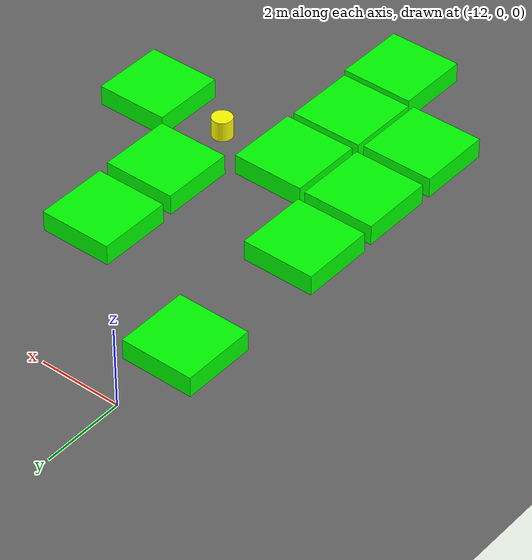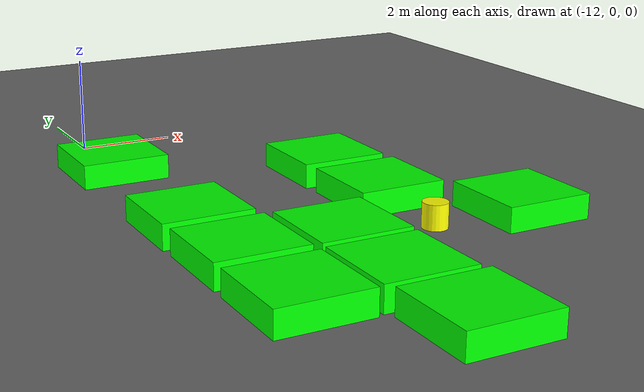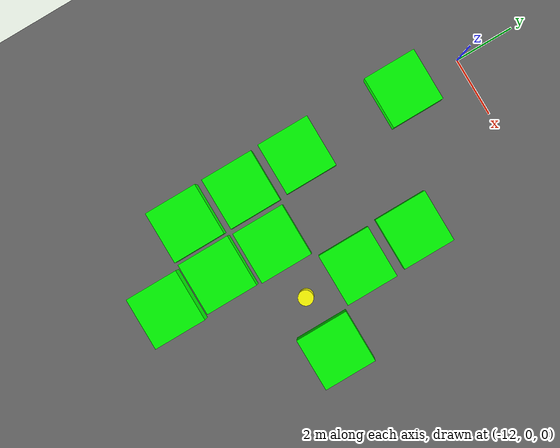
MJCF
<mujoco model="lvl5_deadend_obs10_dmid_depth1_seed2092">
    <compiler angle="degree" coordinate="local" inertiafromgeom="true"/>
    <option integrator="RK4" timestep="0.01"/>

    <asset>
        <texture builtin="gradient" height="100" rgb1="0.6 0.8 1" rgb2="0 0 0" type="skybox" width="100"/>
        <texture name="floor_texture" type="2d" builtin="checker" width="100" height="100" rgb1="0 0 0" rgb2="0.8 0.8 0.8"/>
        <material name="MatPlane" reflectance="0.5" shininess="1" specular="1" texrepeat="10 10" texture="floor_texture"/>
    </asset>

    <!-- Excluding the contact between the agent and the goal, and the agent and the floor -->
    <contact>
        <exclude body1="agent" body2="goal"/>
        <exclude body1 = "agent" body2 = "floor"/>
    </contact>

    <extension>
        <plugin plugin = "mujoco.pid">
            <instance name = "pid1">
                <config key="kp" value="2"/>
                <config key="ki" value="0"/>
                <config key="kd" value="55"/>
            </instance>
        </plugin>
    </extension>

    <worldbody>
        <light cutoff="100" diffuse="1 1 1" dir="-0 0 -1.3" directional="true" exponent="1" pos="0 0 1.3" specular=".1 .1 .1"/>
        <body name="floor" pos="0 0 0">
            <geom name="floor_geom" type="plane" size="20 20 0.1" material="MatPlane"/>
        </body>

                <body name="goal" pos="0.0000 0.0000 0">
            <geom name="goal_geom" type="plane" size="0.5 0.5 1" pos="0 0 0" rgba="1 0 0 1"/>
        </body>

                <body name="agent" pos="-8.0000 -8.0000 0.250">
            <joint name="j1" type="slide" axis ="1 0 0 "/>
            <joint name="j2" type="slide" axis ="0 1 0 "/>
            <geom name="agent_geom" type="cylinder" size="0.25 0.25 0.250" rgba="1 1 0 1"/>
        </body>

        <body name="obstacle1" pos="-12.0551 -2.0180 0.250">  <geom name="obstacle1_geom" type="box" size="0.9000 0.9000 0.250" rgba="0 1 0 1"/></body>
        <body name="obstacle2" pos="-8.0815 -3.9855 0.250">  <geom name="obstacle2_geom" type="box" size="0.9000 0.9000 0.250" rgba="0 1 0 1"/></body>
        <body name="obstacle3" pos="-11.9801 -5.9483 0.250">  <geom name="obstacle3_geom" type="box" size="0.9000 0.9000 0.250" rgba="0 1 0 1"/></body>
        <body name="obstacle4" pos="-8.0223 -6.0892 0.250">  <geom name="obstacle4_geom" type="box" size="0.9000 0.9000 0.250" rgba="0 1 0 1"/></body>
        <body name="obstacle5" pos="-11.9419 -8.0103 0.250">  <geom name="obstacle5_geom" type="box" size="0.9000 0.9000 0.250" rgba="0 1 0 1"/></body>
        <body name="obstacle6" pos="-9.9901 -8.0425 0.250">  <geom name="obstacle6_geom" type="box" size="0.9000 0.9000 0.250" rgba="0 1 0 1"/></body>
        <body name="obstacle7" pos="-6.0993 -8.0351 0.250">  <geom name="obstacle7_geom" type="box" size="0.9000 0.9000 0.250" rgba="0 1 0 1"/></body>
        <body name="obstacle8" pos="-11.9348 -10.0613 0.250">  <geom name="obstacle8_geom" type="box" size="0.9000 0.9000 0.250" rgba="0 1 0 1"/></body>
        <body name="obstacle9" pos="-10.0281 -10.0104 0.250">  <geom name="obstacle9_geom" type="box" size="0.9000 0.9000 0.250" rgba="0 1 0 1"/></body>
        <body name="obstacle10" pos="-9.9223 -11.9563 0.250">  <geom name="obstacle10_geom" type="box" size="0.9000 0.9000 0.250" rgba="0 1 0 1"/></body>

    </worldbody>

    <sensor>
<!-- SENSORS -->

        <distance name="dist1" geom1="agent_geom" geom2="obstacle1_geom" cutoff="1.5"/>
        <distance name="dist2" geom1="agent_geom" geom2="obstacle2_geom" cutoff="1.5"/>
        <distance name="dist3" geom1="agent_geom" geom2="obstacle3_geom" cutoff="1.5"/>
        <distance name="dist4" geom1="agent_geom" geom2="obstacle4_geom" cutoff="1.5"/>
        <distance name="dist5" geom1="agent_geom" geom2="obstacle5_geom" cutoff="1.5"/>
        <distance name="dist6" geom1="agent_geom" geom2="obstacle6_geom" cutoff="1.5"/>
        <distance name="dist7" geom1="agent_geom" geom2="obstacle7_geom" cutoff="1.5"/>
        <distance name="dist8" geom1="agent_geom" geom2="obstacle8_geom" cutoff="1.5"/>
        <distance name="dist9" geom1="agent_geom" geom2="obstacle9_geom" cutoff="1.5"/>
        <distance name="dist10" geom1="agent_geom" geom2="obstacle10_geom" cutoff="1.5"/>
</sensor>

    <actuator>
        <plugin joint="j1" plugin="mujoco.pid" instance="pid1" />
        <plugin joint="j2" plugin="mujoco.pid" instance="pid1"/>
    </actuator>
</mujoco>
